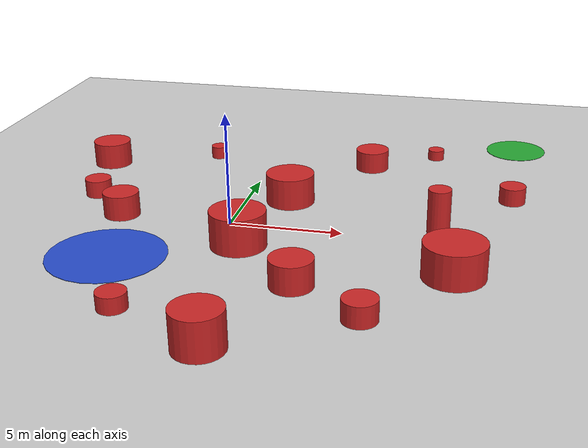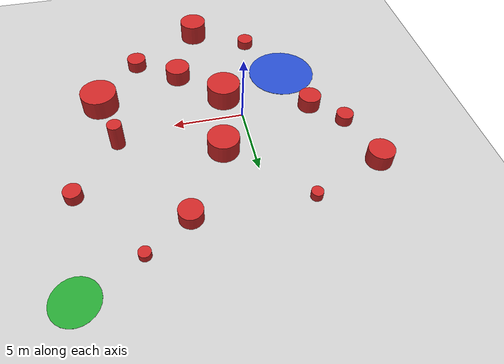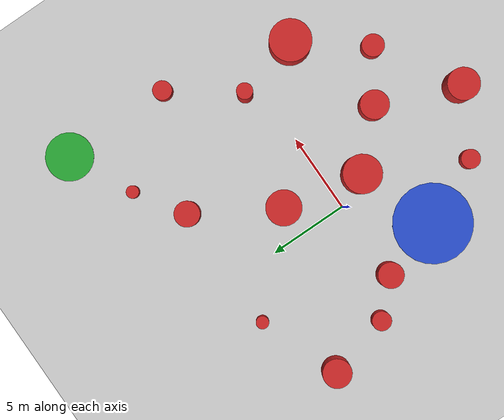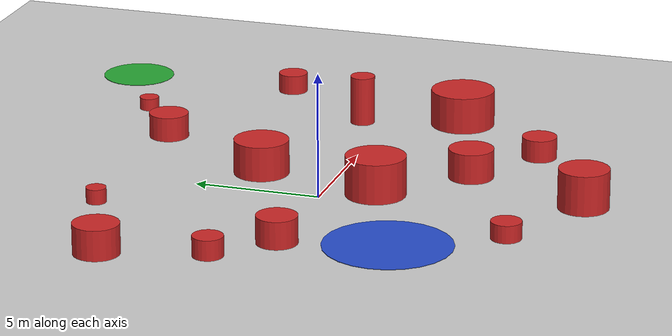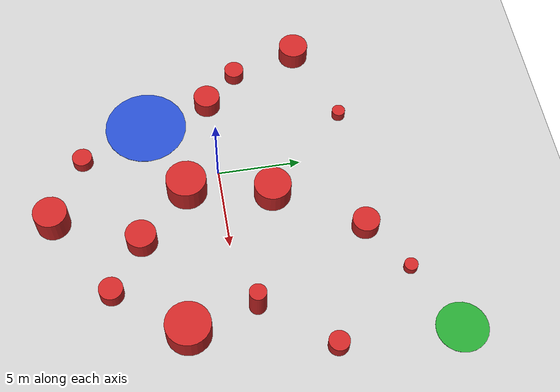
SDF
<?xml version="1.0"?>
<sdf version="1.6">
  <world name="world3_complex">

    <!-- Physics -->
    <physics name="default_physics" default="0" type="ode">
      <gravity>0 0 -9.8066</gravity>
      <ode>
        <solver>
          <type>quick</type>
          <iters>10</iters>
          <sor>1.3</sor>
        </solver>
      </ode>
      <real_time_factor>1</real_time_factor>
      <real_time_update_rate>1000</real_time_update_rate>
    </physics>

    <!-- Ground Plane -->
    <include>
      <uri>model://ground_plane</uri>
    </include>

    <!-- Lighting -->
    <include>
      <uri>model://sun</uri>
    </include>

    <!-- Start Area (Blue Platform) - Enlarged for 4 robots -->
    <model name="start_area">
      <pose>-4 -4 0.01 0 0 0</pose>
      <static>true</static>
      <link name="link">
        <visual name="visual">
          <geometry>
            <cylinder>
              <radius>2.5</radius>
              <length>0.02</length>
            </cylinder>
          </geometry>
          <material>
            <script>
              <name>Gazebo/Blue</name>
            </script>
          </material>
        </visual>
        <collision name="collision">
          <geometry>
            <cylinder>
              <radius>2.5</radius>
              <length>0.02</length>
            </cylinder>
          </geometry>
        </collision>
      </link>
    </model>

    <!-- Target Area (Green Platform) - Very Far -->
    <model name="target_area">
      <pose>12 12 0.01 0 0 0</pose>
      <static>true</static>
      <link name="link">
        <visual name="visual">
          <geometry>
            <cylinder>
              <radius>1.5</radius>
              <length>0.02</length>
            </cylinder>
          </geometry>
          <material>
            <script>
              <name>Gazebo/Green</name>
            </script>
          </material>
        </visual>
        <collision name="collision">
          <geometry>
            <cylinder>
              <radius>1.5</radius>
              <length>0.02</length>
            </cylinder>
          </geometry>
        </collision>
      </link>
    </model>

    <!-- Obstacle 1 - Large Circle (Near start) -->
    <model name="obstacle1">
      <pose>1 -2 0.8 0 0 0</pose>
      <static>true</static>
      <link name="link">
        <visual name="visual">
          <geometry>
            <cylinder>
              <radius>1.2</radius>
              <length>1.6</length>
            </cylinder>
          </geometry>
          <material>
            <script>
              <name>Gazebo/Red</name>
            </script>
          </material>
        </visual>
        <collision name="collision">
          <geometry>
            <cylinder>
              <radius>1.2</radius>
              <length>1.6</length>
            </cylinder>
          </geometry>
        </collision>
      </link>
    </model>

    <!-- Obstacle 2 - Medium Circle (Mid area) -->
    <model name="obstacle2">
      <pose>4 -5 0.6 0 0 0</pose>
      <static>true</static>
      <link name="link">
        <visual name="visual">
          <geometry>
            <cylinder>
              <radius>0.9</radius>
              <length>1.2</length>
            </cylinder>
          </geometry>
          <material>
            <script>
              <name>Gazebo/Red</name>
            </script>
          </material>
        </visual>
        <collision name="collision">
          <geometry>
            <cylinder>
              <radius>0.9</radius>
              <length>1.2</length>
            </cylinder>
          </geometry>
        </collision>
      </link>
    </model>

    <!-- Obstacle 3 - Small Circle (Left side) -->
    <model name="obstacle3">
      <pose>-7 2 0.4 0 0 0</pose>
      <static>true</static>
      <link name="link">
        <visual name="visual">
          <geometry>
            <cylinder>
              <radius>0.6</radius>
              <length>0.8</length>
            </cylinder>
          </geometry>
          <material>
            <script>
              <name>Gazebo/Red</name>
            </script>
          </material>
        </visual>
        <collision name="collision">
          <geometry>
            <cylinder>
              <radius>0.6</radius>
              <length>0.8</length>
            </cylinder>
          </geometry>
        </collision>
      </link>
    </model>

    <!-- Obstacle 4 - Medium-Large Circle (Center area) -->
    <model name="obstacle4">
      <pose>2 3 0.7 0 0 0</pose>
      <static>true</static>
      <link name="link">
        <visual name="visual">
          <geometry>
            <cylinder>
              <radius>1.1</radius>
              <length>1.4</length>
            </cylinder>
          </geometry>
          <material>
            <script>
              <name>Gazebo/Red</name>
            </script>
          </material>
        </visual>
        <collision name="collision">
          <geometry>
            <cylinder>
              <radius>1.1</radius>
              <length>1.4</length>
            </cylinder>
          </geometry>
        </collision>
      </link>
    </model>

    <!-- Obstacle 5 - Tall Circle (Far right) -->
    <model name="obstacle5">
      <pose>9 1 1.0 0 0 0</pose>
      <static>true</static>
      <link name="link">
        <visual name="visual">
          <geometry>
            <cylinder>
              <radius>0.5</radius>
              <length>2.0</length>
            </cylinder>
          </geometry>
          <material>
            <script>
              <name>Gazebo/Red</name>
            </script>
          </material>
        </visual>
        <collision name="collision">
          <geometry>
            <cylinder>
              <radius>0.5</radius>
              <length>2.0</length>
            </cylinder>
          </geometry>
        </collision>
      </link>
    </model>

    <!-- Obstacle 6 - Extra Small Circle (Upper left) -->
    <model name="obstacle6">
      <pose>-3 8 0.3 0 0 0</pose>
      <static>true</static>
      <link name="link">
        <visual name="visual">
          <geometry>
            <cylinder>
              <radius>0.4</radius>
              <length>0.6</length>
            </cylinder>
          </geometry>
          <material>
            <script>
              <name>Gazebo/Red</name>
            </script>
          </material>
        </visual>
        <collision name="collision">
          <geometry>
            <cylinder>
              <radius>0.4</radius>
              <length>0.6</length>
            </cylinder>
          </geometry>
        </collision>
      </link>
    </model>

    <!-- Obstacle 7 - Medium Circle (Upper area) -->
    <model name="obstacle7">
      <pose>5 8 0.5 0 0 0</pose>
      <static>true</static>
      <link name="link">
        <visual name="visual">
          <geometry>
            <cylinder>
              <radius>0.8</radius>
              <length>1.0</length>
            </cylinder>
          </geometry>
          <material>
            <script>
              <name>Gazebo/Red</name>
            </script>
          </material>
        </visual>
        <collision name="collision">
          <geometry>
            <cylinder>
              <radius>0.8</radius>
              <length>1.0</length>
            </cylinder>
          </geometry>
        </collision>
      </link>
    </model>

    <!-- Obstacle 8 - Large Circle (Mid-right) -->
    <model name="obstacle8">
      <pose>10 -3 0.75 0 0 0</pose>
      <static>true</static>
      <link name="link">
        <visual name="visual">
          <geometry>
            <cylinder>
              <radius>1.3</radius>
              <length>1.5</length>
            </cylinder>
          </geometry>
          <material>
            <script>
              <name>Gazebo/Red</name>
            </script>
          </material>
        </visual>
        <collision name="collision">
          <geometry>
            <cylinder>
              <radius>1.3</radius>
              <length>1.5</length>
            </cylinder>
          </geometry>
        </collision>
      </link>
    </model>

    <!-- Obstacle 9 - Small Circle (Bottom area) -->
    <model name="obstacle9">
      <pose>-2 -8 0.35 0 0 0</pose>
      <static>true</static>
      <link name="link">
        <visual name="visual">
          <geometry>
            <cylinder>
              <radius>0.6</radius>
              <length>0.7</length>
            </cylinder>
          </geometry>
          <material>
            <script>
              <name>Gazebo/Red</name>
            </script>
          </material>
        </visual>
        <collision name="collision">
          <geometry>
            <cylinder>
              <radius>0.6</radius>
              <length>0.7</length>
            </cylinder>
          </geometry>
        </collision>
      </link>
    </model>

    <!-- Obstacle 10 - Medium Circle (Far left) -->
    <model name="obstacle10">
      <pose>-8 6 0.6 0 0 0</pose>
      <static>true</static>
      <link name="link">
        <visual name="visual">
          <geometry>
            <cylinder>
              <radius>0.9</radius>
              <length>1.2</length>
            </cylinder>
          </geometry>
          <material>
            <script>
              <name>Gazebo/Red</name>
            </script>
          </material>
        </visual>
        <collision name="collision">
          <geometry>
            <cylinder>
              <radius>0.9</radius>
              <length>1.2</length>
            </cylinder>
          </geometry>
        </collision>
      </link>
    </model>

    <!-- Obstacle 11 - Extra Small Circle (Near target) -->
    <model name="obstacle11">
      <pose>8 10 0.25 0 0 0</pose>
      <static>true</static>
      <link name="link">
        <visual name="visual">
          <geometry>
            <cylinder>
              <radius>0.4</radius>
              <length>0.5</length>
            </cylinder>
          </geometry>
          <material>
            <script>
              <name>Gazebo/Red</name>
            </script>
          </material>
        </visual>
        <collision name="collision">
          <geometry>
            <cylinder>
              <radius>0.4</radius>
              <length>0.5</length>
            </cylinder>
          </geometry>
        </collision>
      </link>
    </model>

    <!-- Obstacle 12 - Medium-Small Circle (Mid-bottom) -->
    <model name="obstacle12">
      <pose>7 -7 0.45 0 0 0</pose>
      <static>true</static>
      <link name="link">
        <visual name="visual">
          <geometry>
            <cylinder>
              <radius>0.7</radius>
              <length>0.9</length>
            </cylinder>
          </geometry>
          <material>
            <script>
              <name>Gazebo/Red</name>
            </script>
          </material>
        </visual>
        <collision name="collision">
          <geometry>
            <cylinder>
              <radius>0.7</radius>
              <length>0.9</length>
            </cylinder>
          </geometry>
        </collision>
      </link>
    </model>

    <!-- Additional Obstacle 13 - Medium Circle (Center-left) -->
    <model name="obstacle13">
      <pose>-5 0 0.55 0 0 0</pose>
      <static>true</static>
      <link name="link">
        <visual name="visual">
          <geometry>
            <cylinder>
              <radius>0.8</radius>
              <length>1.1</length>
            </cylinder>
          </geometry>
          <material>
            <script>
              <name>Gazebo/Red</name>
            </script>
          </material>
        </visual>
        <collision name="collision">
          <geometry>
            <cylinder>
              <radius>0.8</radius>
              <length>1.1</length>
            </cylinder>
          </geometry>
        </collision>
      </link>
    </model>

    <!-- Additional Obstacle 14 - Small Circle (Right side) -->
    <model name="obstacle14">
      <pose>12 5 0.4 0 0 0</pose>
      <static>true</static>
      <link name="link">
        <visual name="visual">
          <geometry>
            <cylinder>
              <radius>0.6</radius>
              <length>0.8</length>
            </cylinder>
          </geometry>
          <material>
            <script>
              <name>Gazebo/Red</name>
            </script>
          </material>
        </visual>
        <collision name="collision">
          <geometry>
            <cylinder>
              <radius>0.6</radius>
              <length>0.8</length>
            </cylinder>
          </geometry>
        </collision>
      </link>
    </model>

    <!-- Additional Obstacle 15 - Large Circle (Far bottom) -->
    <model name="obstacle15">
      <pose>2 -10 0.8 0 0 0</pose>
      <static>true</static>
      <link name="link">
        <visual name="visual">
          <geometry>
            <cylinder>
              <radius>1.0</radius>
              <length>1.6</length>
            </cylinder>
          </geometry>
          <material>
            <script>
              <name>Gazebo/Red</name>
            </script>
          </material>
        </visual>
        <collision name="collision">
          <geometry>
            <cylinder>
              <radius>1.0</radius>
              <length>1.6</length>
            </cylinder>
          </geometry>
        </collision>
      </link>
    </model>

  </world>
</sdf>
